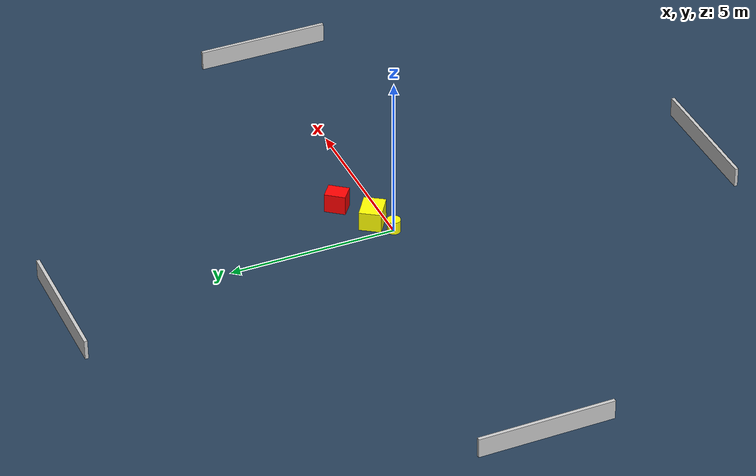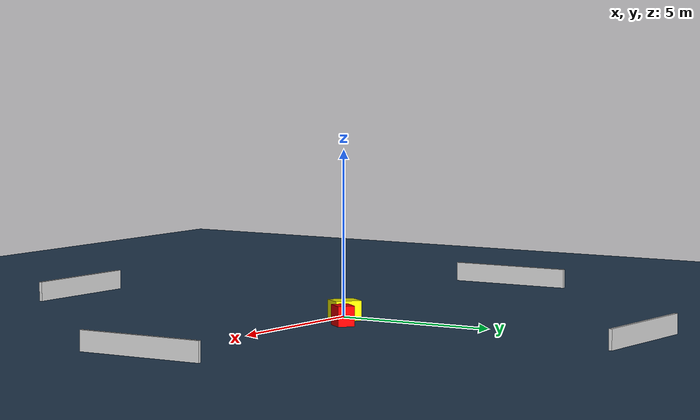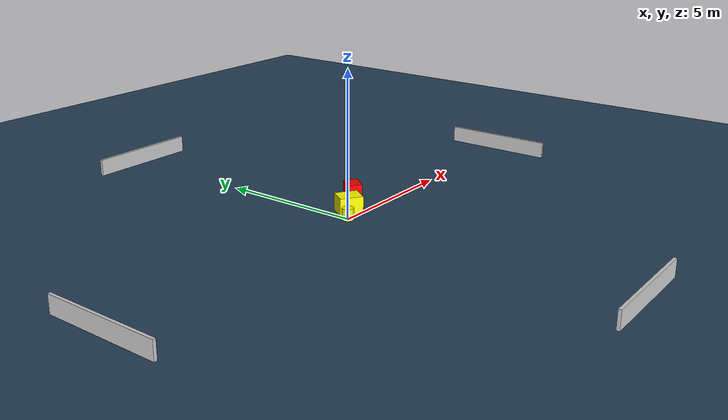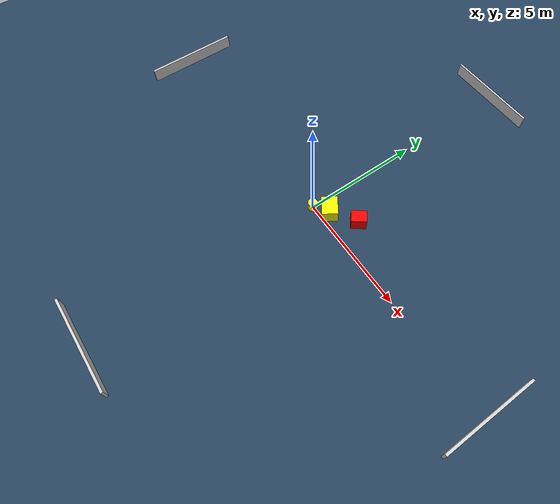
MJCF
<?xml version="1.0" ?>
<mujoco model="generated_environment">
  <option timestep="0.01" integrator="RK4" cone="elliptic"/>
  <default>
    <geom density="1"/>
  </default>
  <asset>
    <texture builtin="gradient" height="3072" name="skybox" rgb1="0.3 0.5 0.7" rgb2="0 0 0" type="skybox" width="512"/>
    <texture builtin="checker" height="300" name="groundplane" rgb1="0.2 0.3 0.4" rgb2="0.1 0.2 0.3" type="2d" width="300"/>
    <material name="groundplane" reflectance="0.2" texrepeat="5 5" texture="groundplane"/>
  </asset>
  <worldbody>
    <light dir="0 0 -1" directional="true" pos="0 0 1.5"/>
    <geom condim="3" friction="0.5 0.005 0.001" material="groundplane" name="floor" pos="0 0 0" size="0 0 0.05" type="plane"/>
    <body name="walls">
      <geom name="wall_1" condim="4" pos="-10.0 0.0 0.3" rgba="0.800000011920929 0.800000011920929 0.800000011920929 1.0" size="0.05 2.0 0.3" type="box"/>
      <geom name="wall_2" condim="4" pos="10.0 0.0 0.3" rgba="0.800000011920929 0.800000011920929 0.800000011920929 1.0" size="0.05 2.0 0.3" type="box"/>
      <geom name="wall_3" condim="4" pos="0.0 -10.0 0.3" rgba="0.800000011920929 0.800000011920929 0.800000011920929 1.0" size="2.0 0.05 0.3" type="box"/>
      <geom name="wall_4" condim="4" pos="0.0 10.0 0.3" rgba="0.800000011920929 0.800000011920929 0.800000011920929 1.0" size="2.0 0.05 0.3" type="box"/>
    </body>
    <body name="robot">
      <joint name="joint_x" type="slide" pos="0 0 0" axis="1 0 0"/>
      <joint name="joint_y" type="slide" pos="0 0 0" axis="0 1 0"/>
      <geom name="robot" type="cylinder" pos="0.0 0.0 0.2" size="0.2 0.2 0.0" mass="5.0" friction="1.0 0.005 0.0001" condim="4" rgba="1.0 1.0 0.0 1.0"/>
    </body>
    <body name="obstacle_1_movable">
      <geom name="obstacle_1_movable" condim="4" pos="0.5815295157538947 0.4102420882534961 0.3" euler="0 0 56.135484594743815" friction="0.0 0.005 0.001" rgba="1.0 1.0 0.0 1.0" size="0.328867458143544 0.4037469204002162 0.3" type="box" mass="0.1"/>
      <joint type="free"/>
    </body>
    <body name="obstacle_2_static">
      <geom name="obstacle_2_static" condim="4" pos="1.6589373540212058 1.0609704726306939 0.3" euler="0 0 52.341310435814705" friction="0.0 0.005 0.001" rgba="1.0 0.0 0.0 1.0" size="0.31387735731154615 0.25247116425229243 0.3" type="box"/>
    </body>
  </worldbody>
  <actuator>
    <motor name="actuator_x" joint="joint_x" gear="1" ctrlrange="-1 1"/>
    <motor name="actuator_y" joint="joint_y" gear="1" ctrlrange="-1 1"/>
  </actuator>
</mujoco>
